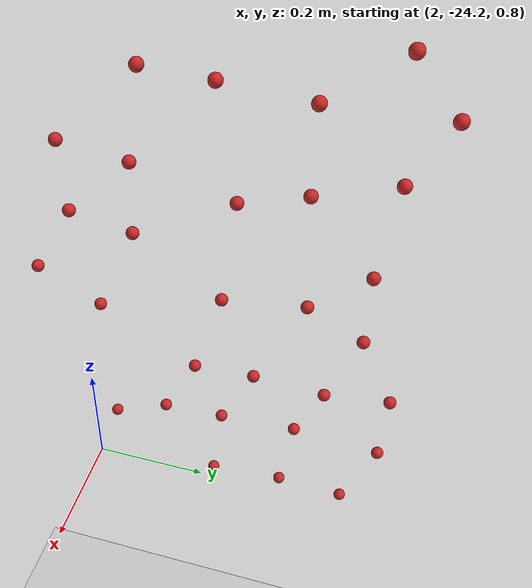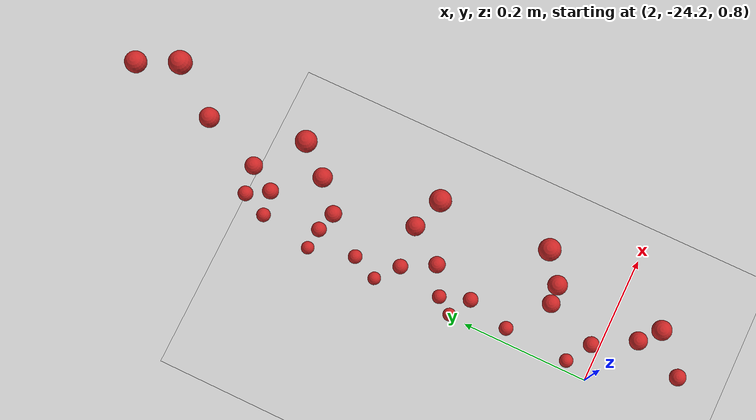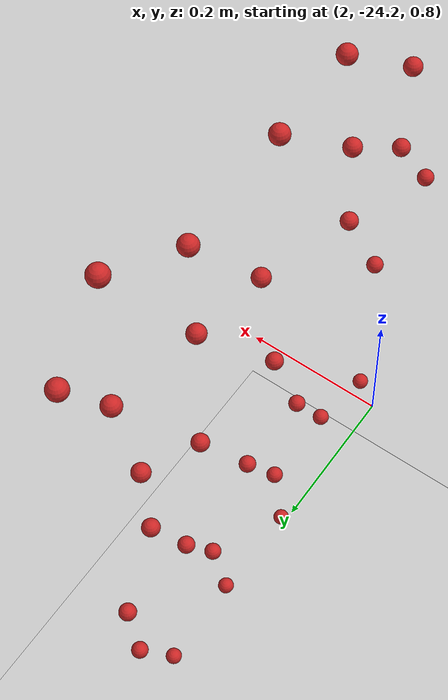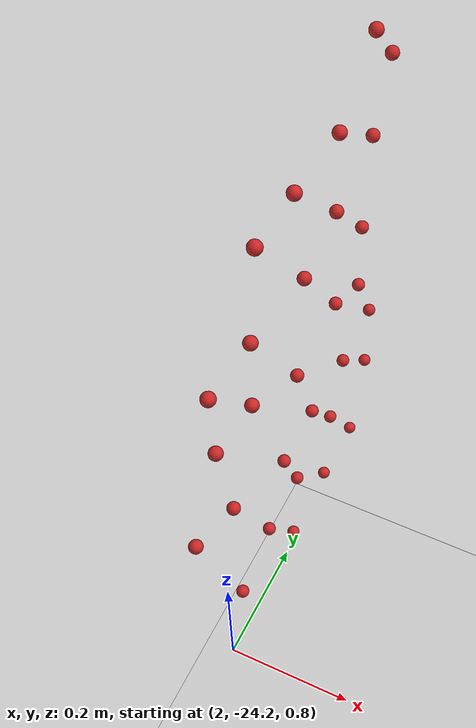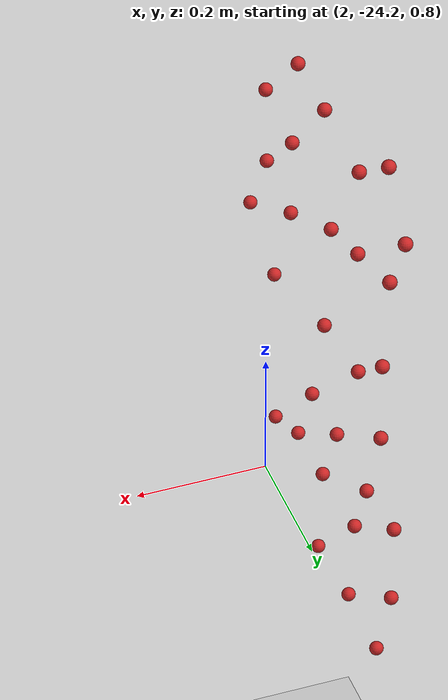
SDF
<sdf version="1.4">
 <world name="default">
  <model name="ground_plane">
   <static>1</static>
   <link name="link">
    <collision name="collision">
     <geometry><plane><normal>0 0 1</normal><size>100 100</size></plane></geometry>
     <surface><friction><ode><mu>100</mu><mu2>50</mu2></ode></friction></surface>
    </collision>
    <visual name="visual">
     <cast_shadows>0</cast_shadows>
     <geometry><plane><normal>0 0 1</normal><size>100 100</size></plane></geometry>
     <material>
      <script><uri>file://media/materials/scripts/gazebo.material</uri><name>Gazebo/Grey</name></script>
     </material>
    </visual>
    <velocity_decay><linear>0</linear><angular>0</angular></velocity_decay>
   </link>
  </model>
  <model name="apple651">
   <link name="my_apple">
    <inertial>
     <pose>2 0 0 0 -0 0</pose>
     <mass>1</mass>
     <inertia><ixx>1</ixx><ixy>0</ixy><ixz>0</ixz><iyy>1</iyy><iyz>0</iyz><izz>1</izz></inertia>
    </inertial>
    <collision name="my_apple_collision">
     <pose>2 0 1 0 -0 0</pose>
     <geometry><sphere><radius>0.01</radius></sphere></geometry>
    </collision>
    <visual name="my_apple_visual">
     <pose>2 0 1 0 -0 0</pose>
     <geometry><sphere><radius>0.01</radius></sphere></geometry>
     <material><script><name>Gazebo/Red</name><uri>__default__</uri></script></material>
    </visual>
    <gravity>0</gravity>
    <velocity_decay><linear>0</linear><angular>0</angular></velocity_decay>
   </link>
   <pose>0 -24.2665 0.242997 0 -0 0</pose>
   <static>0</static>
  </model>
  <model name="apple654">
   <link name="my_apple">
    <inertial>
     <pose>2 0 0 0 -0 0</pose>
     <mass>1</mass>
     <inertia><ixx>1</ixx><ixy>0</ixy><ixz>0</ixz><iyy>1</iyy><iyz>0</iyz><izz>1</izz></inertia>
    </inertial>
    <collision name="my_apple_collision">
     <pose>2 0 1 0 -0 0</pose>
     <geometry><sphere><radius>0.01</radius></sphere></geometry>
    </collision>
    <visual name="my_apple_visual">
     <pose>2 0 1 0 -0 0</pose>
     <geometry><sphere><radius>0.01</radius></sphere></geometry>
     <material><script><name>Gazebo/Red</name><uri>__default__</uri></script></material>
    </visual>
    <gravity>0</gravity>
    <velocity_decay><linear>0</linear><angular>0</angular></velocity_decay>
   </link>
   <pose>0 -24.157 -0.069749 0 -0 0</pose>
   <static>0</static>
  </model>
  <model name="apple656">
   <link name="my_apple">
    <inertial>
     <pose>2 0 0 0 -0 0</pose>
     <mass>1</mass>
     <inertia><ixx>1</ixx><ixy>0</ixy><ixz>0</ixz><iyy>1</iyy><iyz>0</iyz><izz>1</izz></inertia>
    </inertial>
    <collision name="my_apple_collision">
     <pose>2 0 1 0 -0 0</pose>
     <geometry><sphere><radius>0.01</radius></sphere></geometry>
    </collision>
    <visual name="my_apple_visual">
     <pose>2 0 1 0 -0 0</pose>
     <geometry><sphere><radius>0.01</radius></sphere></geometry>
     <material><script><name>Gazebo/Red</name><uri>__default__</uri></script></material>
    </visual>
    <gravity>0</gravity>
    <velocity_decay><linear>0</linear><angular>0</angular></velocity_decay>
   </link>
   <pose>0 -24.0984 0.345343 0 -0 0</pose>
   <static>0</static>
  </model>
  <model name="apple657">
   <link name="my_apple">
    <inertial>
     <pose>2 0 0 0 -0 0</pose>
     <mass>1</mass>
     <inertia><ixx>1</ixx><ixy>0</ixy><ixz>0</ixz><iyy>1</iyy><iyz>0</iyz><izz>1</izz></inertia>
    </inertial>
    <collision name="my_apple_collision">
     <pose>2 0 1 0 -0 0</pose>
     <geometry><sphere><radius>0.01</radius></sphere></geometry>
    </collision>
    <visual name="my_apple_visual">
     <pose>2 0 1 0 -0 0</pose>
     <geometry><sphere><radius>0.01</radius></sphere></geometry>
     <material><script><name>Gazebo/Red</name><uri>__default__</uri></script></material>
    </visual>
    <gravity>0</gravity>
    <velocity_decay><linear>0</linear><angular>0</angular></velocity_decay>
   </link>
   <pose>0 -24.0947 0.468749 0 -0 0</pose>
   <static>0</static>
  </model>
  <model name="apple660">
   <link name="my_apple">
    <inertial>
     <pose>2 0 0 0 -0 0</pose>
     <mass>1</mass>
     <inertia><ixx>1</ixx><ixy>0</ixy><ixz>0</ixz><iyy>1</iyy><iyz>0</iyz><izz>1</izz></inertia>
    </inertial>
    <collision name="my_apple_collision">
     <pose>2 0 1 0 -0 0</pose>
     <geometry><sphere><radius>0.01</radius></sphere></geometry>
    </collision>
    <visual name="my_apple_visual">
     <pose>2 0 1 0 -0 0</pose>
     <geometry><sphere><radius>0.01</radius></sphere></geometry>
     <material><script><name>Gazebo/Red</name><uri>__default__</uri></script></material>
    </visual>
    <gravity>0</gravity>
    <velocity_decay><linear>0</linear><angular>0</angular></velocity_decay>
   </link>
   <pose>0 -24.0619 -0.025178 0 -0 0</pose>
   <static>0</static>
  </model>
  <model name="apple662">
   <link name="my_apple">
    <inertial>
     <pose>2 0 0 0 -0 0</pose>
     <mass>1</mass>
     <inertia><ixx>1</ixx><ixy>0</ixy><ixz>0</ixz><iyy>1</iyy><iyz>0</iyz><izz>1</izz></inertia>
    </inertial>
    <collision name="my_apple_collision">
     <pose>2 0 1 0 -0 0</pose>
     <geometry><sphere><radius>0.01</radius></sphere></geometry>
    </collision>
    <visual name="my_apple_visual">
     <pose>2 0 1 0 -0 0</pose>
     <geometry><sphere><radius>0.01</radius></sphere></geometry>
     <material><script><name>Gazebo/Red</name><uri>__default__</uri></script></material>
    </visual>
    <gravity>0</gravity>
    <velocity_decay><linear>0</linear><angular>0</angular></velocity_decay>
   </link>
   <pose>0 -23.961 0.24875 0 -0 0</pose>
   <static>0</static>
  </model>
  <model name="apple664">
   <link name="my_apple">
    <inertial>
     <pose>2 0 0 0 -0 0</pose>
     <mass>1</mass>
     <inertia><ixx>1</ixx><ixy>0</ixy><ixz>0</ixz><iyy>1</iyy><iyz>0</iyz><izz>1</izz></inertia>
    </inertial>
    <collision name="my_apple_collision">
     <pose>2 0 1 0 -0 0</pose>
     <geometry><sphere><radius>0.01</radius></sphere></geometry>
    </collision>
    <visual name="my_apple_visual">
     <pose>2 0 1 0 -0 0</pose>
     <geometry><sphere><radius>0.01</radius></sphere></geometry>
     <material><script><name>Gazebo/Red</name><uri>__default__</uri></script></material>
    </visual>
    <gravity>0</gravity>
    <velocity_decay><linear>0</linear><angular>0</angular></velocity_decay>
   </link>
   <pose>0 -23.9747 -0.168813 0 -0 0</pose>
   <static>0</static>
  </model>
  <model name="apple665">
   <link name="my_apple">
    <inertial>
     <pose>2 0 0 0 -0 0</pose>
     <mass>1</mass>
     <inertia><ixx>1</ixx><ixy>0</ixy><ixz>0</ixz><iyy>1</iyy><iyz>0</iyz><izz>1</izz></inertia>
    </inertial>
    <collision name="my_apple_collision">
     <pose>2 0 1 0 -0 0</pose>
     <geometry><sphere><radius>0.01</radius></sphere></geometry>
    </collision>
    <visual name="my_apple_visual">
     <pose>2 0 1 0 -0 0</pose>
     <geometry><sphere><radius>0.01</radius></sphere></geometry>
     <material><script><name>Gazebo/Red</name><uri>__default__</uri></script></material>
    </visual>
    <gravity>0</gravity>
    <velocity_decay><linear>0</linear><angular>0</angular></velocity_decay>
   </link>
   <pose>0 -23.9064 0.095346 0 -0 0</pose>
   <static>0</static>
  </model>
  <model name="apple666">
   <link name="my_apple">
    <inertial>
     <pose>2 0 0 0 -0 0</pose>
     <mass>1</mass>
     <inertia><ixx>1</ixx><ixy>0</ixy><ixz>0</ixz><iyy>1</iyy><iyz>0</iyz><izz>1</izz></inertia>
    </inertial>
    <collision name="my_apple_collision">
     <pose>2 0 1 0 -0 0</pose>
     <geometry><sphere><radius>0.01</radius></sphere></geometry>
    </collision>
    <visual name="my_apple_visual">
     <pose>2 0 1 0 -0 0</pose>
     <geometry><sphere><radius>0.01</radius></sphere></geometry>
     <material><script><name>Gazebo/Red</name><uri>__default__</uri></script></material>
    </visual>
    <gravity>0</gravity>
    <velocity_decay><linear>0</linear><angular>0</angular></velocity_decay>
   </link>
   <pose>0 -24.1647 0.187389 0 -0 0</pose>
   <static>0</static>
  </model>
  <model name="apple668">
   <link name="my_apple">
    <inertial>
     <pose>2 0 0 0 -0 0</pose>
     <mass>1</mass>
     <inertia><ixx>1</ixx><ixy>0</ixy><ixz>0</ixz><iyy>1</iyy><iyz>0</iyz><izz>1</izz></inertia>
    </inertial>
    <collision name="my_apple_collision">
     <pose>2 0 1 0 -0 0</pose>
     <geometry><sphere><radius>0.01</radius></sphere></geometry>
    </collision>
    <visual name="my_apple_visual">
     <pose>2 0 1 0 -0 0</pose>
     <geometry><sphere><radius>0.01</radius></sphere></geometry>
     <material><script><name>Gazebo/Red</name><uri>__default__</uri></script></material>
    </visual>
    <gravity>0</gravity>
    <velocity_decay><linear>0</linear><angular>0</angular></velocity_decay>
   </link>
   <pose>0 -23.8386 0.463517 0 -0 0</pose>
   <static>0</static>
  </model>
  <model name="apple669">
   <link name="my_apple">
    <inertial>
     <pose>2 0 0 0 -0 0</pose>
     <mass>1</mass>
     <inertia><ixx>1</ixx><ixy>0</ixy><ixz>0</ixz><iyy>1</iyy><iyz>0</iyz><izz>1</izz></inertia>
    </inertial>
    <collision name="my_apple_collision">
     <pose>2 0 1 0 -0 0</pose>
     <geometry><sphere><radius>0.01</radius></sphere></geometry>
    </collision>
    <visual name="my_apple_visual">
     <pose>2 0 1 0 -0 0</pose>
     <geometry><sphere><radius>0.01</radius></sphere></geometry>
     <material><script><name>Gazebo/Red</name><uri>__default__</uri></script></material>
    </visual>
    <gravity>0</gravity>
    <velocity_decay><linear>0</linear><angular>0</angular></velocity_decay>
   </link>
   <pose>0 -23.9702 0.610209 0 -0 0</pose>
   <static>0</static>
  </model>
  <model name="apple670">
   <link name="my_apple">
    <inertial>
     <pose>2 0 0 0 -0 0</pose>
     <mass>1</mass>
     <inertia><ixx>1</ixx><ixy>0</ixy><ixz>0</ixz><iyy>1</iyy><iyz>0</iyz><izz>1</izz></inertia>
    </inertial>
    <collision name="my_apple_collision">
     <pose>2 0 1 0 -0 0</pose>
     <geometry><sphere><radius>0.01</radius></sphere></geometry>
    </collision>
    <visual name="my_apple_visual">
     <pose>2 0 1 0 -0 0</pose>
     <geometry><sphere><radius>0.01</radius></sphere></geometry>
     <material><script><name>Gazebo/Red</name><uri>__default__</uri></script></material>
    </visual>
    <gravity>0</gravity>
    <velocity_decay><linear>0</linear><angular>0</angular></velocity_decay>
   </link>
   <pose>0 -23.8386 0.599663 0 -0 0</pose>
   <static>0</static>
  </model>
  <model name="apple671">
   <link name="my_apple">
    <inertial>
     <pose>2 0 0 0 -0 0</pose>
     <mass>1</mass>
     <inertia><ixx>1</ixx><ixy>0</ixy><ixz>0</ixz><iyy>1</iyy><iyz>0</iyz><izz>1</izz></inertia>
    </inertial>
    <collision name="my_apple_collision">
     <pose>2 0 1 0 -0 0</pose>
     <geometry><sphere><radius>0.01</radius></sphere></geometry>
    </collision>
    <visual name="my_apple_visual">
     <pose>2 0 1 0 -0 0</pose>
     <geometry><sphere><radius>0.01</radius></sphere></geometry>
     <material><script><name>Gazebo/Red</name><uri>__default__</uri></script></material>
    </visual>
    <gravity>0</gravity>
    <velocity_decay><linear>0</linear><angular>0</angular></velocity_decay>
   </link>
   <pose>0 -23.832 -0.012742 0 -0 0</pose>
   <static>0</static>
  </model>
  <model name="apple672">
   <link name="my_apple">
    <inertial>
     <pose>2 0 0 0 -0 0</pose>
     <mass>1</mass>
     <inertia><ixx>1</ixx><ixy>0</ixy><ixz>0</ixz><iyy>1</iyy><iyz>0</iyz><izz>1</izz></inertia>
    </inertial>
    <collision name="my_apple_collision">
     <pose>2 0 1 0 -0 0</pose>
     <geometry><sphere><radius>0.01</radius></sphere></geometry>
    </collision>
    <visual name="my_apple_visual">
     <pose>2 0 1 0 -0 0</pose>
     <geometry><sphere><radius>0.01</radius></sphere></geometry>
     <material><script><name>Gazebo/Red</name><uri>__default__</uri></script></material>
    </visual>
    <gravity>0</gravity>
    <velocity_decay><linear>0</linear><angular>0</angular></velocity_decay>
   </link>
   <pose>0 -23.8291 0.268037 0 -0 0</pose>
   <static>0</static>
  </model>
  <model name="apple673">
   <link name="my_apple">
    <inertial>
     <pose>2 0 0 0 -0 0</pose>
     <mass>1</mass>
     <inertia><ixx>1</ixx><ixy>0</ixy><ixz>0</ixz><iyy>1</iyy><iyz>0</iyz><izz>1</izz></inertia>
    </inertial>
    <collision name="my_apple_collision">
     <pose>2 0 1 0 -0 0</pose>
     <geometry><sphere><radius>0.01</radius></sphere></geometry>
    </collision>
    <visual name="my_apple_visual">
     <pose>2 0 1 0 -0 0</pose>
     <geometry><sphere><radius>0.01</radius></sphere></geometry>
     <material><script><name>Gazebo/Red</name><uri>__default__</uri></script></material>
    </visual>
    <gravity>0</gravity>
    <velocity_decay><linear>0</linear><angular>0</angular></velocity_decay>
   </link>
   <pose>0 -23.8508 -0.156813 0 -0 0</pose>
   <static>0</static>
  </model>
  <model name="apple674">
   <link name="my_apple">
    <inertial>
     <pose>2 0 0 0 -0 0</pose>
     <mass>1</mass>
     <inertia><ixx>1</ixx><ixy>0</ixy><ixz>0</ixz><iyy>1</iyy><iyz>0</iyz><izz>1</izz></inertia>
    </inertial>
    <collision name="my_apple_collision">
     <pose>2 0 1 0 -0 0</pose>
     <geometry><sphere><radius>0.01</radius></sphere></geometry>
    </collision>
    <visual name="my_apple_visual">
     <pose>2 0 1 0 -0 0</pose>
     <geometry><sphere><radius>0.01</radius></sphere></geometry>
     <material><script><name>Gazebo/Red</name><uri>__default__</uri></script></material>
    </visual>
    <gravity>0</gravity>
    <velocity_decay><linear>0</linear><angular>0</angular></velocity_decay>
   </link>
   <pose>0 -23.7404 0.345235 0 -0 0</pose>
   <static>0</static>
  </model>
  <model name="apple675">
   <link name="my_apple">
    <inertial>
     <pose>2 0 0 0 -0 0</pose>
     <mass>1</mass>
     <inertia><ixx>1</ixx><ixy>0</ixy><ixz>0</ixz><iyy>1</iyy><iyz>0</iyz><izz>1</izz></inertia>
    </inertial>
    <collision name="my_apple_collision">
     <pose>2 0 1 0 -0 0</pose>
     <geometry><sphere><radius>0.01</radius></sphere></geometry>
    </collision>
    <visual name="my_apple_visual">
     <pose>2 0 1 0 -0 0</pose>
     <geometry><sphere><radius>0.01</radius></sphere></geometry>
     <material><script><name>Gazebo/Red</name><uri>__default__</uri></script></material>
    </visual>
    <gravity>0</gravity>
    <velocity_decay><linear>0</linear><angular>0</angular></velocity_decay>
   </link>
   <pose>0 -23.7207 0.502827 0 -0 0</pose>
   <static>0</static>
  </model>
  <model name="apple676">
   <link name="my_apple">
    <inertial>
     <pose>2 0 0 0 -0 0</pose>
     <mass>1</mass>
     <inertia><ixx>1</ixx><ixy>0</ixy><ixz>0</ixz><iyy>1</iyy><iyz>0</iyz><izz>1</izz></inertia>
    </inertial>
    <collision name="my_apple_collision">
     <pose>2 0 1 0 -0 0</pose>
     <geometry><sphere><radius>0.01</radius></sphere></geometry>
    </collision>
    <visual name="my_apple_visual">
     <pose>2 0 1 0 -0 0</pose>
     <geometry><sphere><radius>0.01</radius></sphere></geometry>
     <material><script><name>Gazebo/Red</name><uri>__default__</uri></script></material>
    </visual>
    <gravity>0</gravity>
    <velocity_decay><linear>0</linear><angular>0</angular></velocity_decay>
   </link>
   <pose>0 -23.6694 0.603498 0 -0 0</pose>
   <static>0</static>
  </model>
  <model name="apple678">
   <link name="my_apple">
    <inertial>
     <pose>2 0 0 0 -0 0</pose>
     <mass>1</mass>
     <inertia><ixx>1</ixx><ixy>0</ixy><ixz>0</ixz><iyy>1</iyy><iyz>0</iyz><izz>1</izz></inertia>
    </inertial>
    <collision name="my_apple_collision">
     <pose>2 0 1 0 -0 0</pose>
     <geometry><sphere><radius>0.01</radius></sphere></geometry>
    </collision>
    <visual name="my_apple_visual">
     <pose>2 0 1 0 -0 0</pose>
     <geometry><sphere><radius>0.01</radius></sphere></geometry>
     <material><script><name>Gazebo/Red</name><uri>__default__</uri></script></material>
    </visual>
    <gravity>0</gravity>
    <velocity_decay><linear>0</linear><angular>0</angular></velocity_decay>
   </link>
   <pose>0 -23.7402 0.220664 0 -0 0</pose>
   <static>0</static>
  </model>
  <model name="apple679">
   <link name="my_apple">
    <inertial>
     <pose>2 0 0 0 -0 0</pose>
     <mass>1</mass>
     <inertia><ixx>1</ixx><ixy>0</ixy><ixz>0</ixz><iyy>1</iyy><iyz>0</iyz><izz>1</izz></inertia>
    </inertial>
    <collision name="my_apple_collision">
     <pose>2 0 1 0 -0 0</pose>
     <geometry><sphere><radius>0.01</radius></sphere></geometry>
    </collision>
    <visual name="my_apple_visual">
     <pose>2 0 1 0 -0 0</pose>
     <geometry><sphere><radius>0.01</radius></sphere></geometry>
     <material><script><name>Gazebo/Red</name><uri>__default__</uri></script></material>
    </visual>
    <gravity>0</gravity>
    <velocity_decay><linear>0</linear><angular>0</angular></velocity_decay>
   </link>
   <pose>0 -24.2027 0.484914 0 -0 0</pose>
   <static>0</static>
  </model>
  <model name="apple681">
   <link name="my_apple">
    <inertial>
     <pose>2 0 0 0 -0 0</pose>
     <mass>1</mass>
     <inertia><ixx>1</ixx><ixy>0</ixy><ixz>0</ixz><iyy>1</iyy><iyz>0</iyz><izz>1</izz></inertia>
    </inertial>
    <collision name="my_apple_collision">
     <pose>2 0 1 0 -0 0</pose>
     <geometry><sphere><radius>0.01</radius></sphere></geometry>
    </collision>
    <visual name="my_apple_visual">
     <pose>2 0 1 0 -0 0</pose>
     <geometry><sphere><radius>0.01</radius></sphere></geometry>
     <material><script><name>Gazebo/Red</name><uri>__default__</uri></script></material>
    </visual>
    <gravity>0</gravity>
    <velocity_decay><linear>0</linear><angular>0</angular></velocity_decay>
   </link>
   <pose>0 -23.9397 0.431607 0 -0 0</pose>
   <static>0</static>
  </model>
  <model name="apple682">
   <link name="my_apple">
    <inertial>
     <pose>2 0 0 0 -0 0</pose>
     <mass>1</mass>
     <inertia><ixx>1</ixx><ixy>0</ixy><ixz>0</ixz><iyy>1</iyy><iyz>0</iyz><izz>1</izz></inertia>
    </inertial>
    <collision name="my_apple_collision">
     <pose>2 0 1 0 -0 0</pose>
     <geometry><sphere><radius>0.01</radius></sphere></geometry>
    </collision>
    <visual name="my_apple_visual">
     <pose>2 0 1 0 -0 0</pose>
     <geometry><sphere><radius>0.01</radius></sphere></geometry>
     <material><script><name>Gazebo/Red</name><uri>__default__</uri></script></material>
    </visual>
    <gravity>0</gravity>
    <velocity_decay><linear>0</linear><angular>0</angular></velocity_decay>
   </link>
   <pose>0 -23.6843 0.103049 0 -0 0</pose>
   <static>0</static>
  </model>
  <model name="apple683">
   <link name="my_apple">
    <inertial>
     <pose>2 0 0 0 -0 0</pose>
     <mass>1</mass>
     <inertia><ixx>1</ixx><ixy>0</ixy><ixz>0</ixz><iyy>1</iyy><iyz>0</iyz><izz>1</izz></inertia>
    </inertial>
    <collision name="my_apple_collision">
     <pose>2 0 1 0 -0 0</pose>
     <geometry><sphere><radius>0.01</radius></sphere></geometry>
    </collision>
    <visual name="my_apple_visual">
     <pose>2 0 1 0 -0 0</pose>
     <geometry><sphere><radius>0.01</radius></sphere></geometry>
     <material><script><name>Gazebo/Red</name><uri>__default__</uri></script></material>
    </visual>
    <gravity>0</gravity>
    <velocity_decay><linear>0</linear><angular>0</angular></velocity_decay>
   </link>
   <pose>0 -23.6882 -0.024886 0 -0 0</pose>
   <static>0</static>
  </model>
  <model name="apple687">
   <link name="my_apple">
    <inertial>
     <pose>2 0 0 0 -0 0</pose>
     <mass>1</mass>
     <inertia><ixx>1</ixx><ixy>0</ixy><ixz>0</ixz><iyy>1</iyy><iyz>0</iyz><izz>1</izz></inertia>
    </inertial>
    <collision name="my_apple_collision">
     <pose>2 0 1 0 -0 0</pose>
     <geometry><sphere><radius>0.01</radius></sphere></geometry>
    </collision>
    <visual name="my_apple_visual">
     <pose>2 0 1 0 -0 0</pose>
     <geometry><sphere><radius>0.01</radius></sphere></geometry>
     <material><script><name>Gazebo/Red</name><uri>__default__</uri></script></material>
    </visual>
    <gravity>0</gravity>
    <velocity_decay><linear>0</linear><angular>0</angular></velocity_decay>
   </link>
   <pose>0 -24.0064 0.090652 0 -0 0</pose>
   <static>0</static>
  </model>
  <model name="apple688">
   <link name="my_apple">
    <inertial>
     <pose>2 0 0 0 -0 0</pose>
     <mass>1</mass>
     <inertia><ixx>1</ixx><ixy>0</ixy><ixz>0</ixz><iyy>1</iyy><iyz>0</iyz><izz>1</izz></inertia>
    </inertial>
    <collision name="my_apple_collision">
     <pose>2 0 1 0 -0 0</pose>
     <geometry><sphere><radius>0.01</radius></sphere></geometry>
    </collision>
    <visual name="my_apple_visual">
     <pose>2 0 1 0 -0 0</pose>
     <geometry><sphere><radius>0.01</radius></sphere></geometry>
     <material><script><name>Gazebo/Red</name><uri>__default__</uri></script></material>
    </visual>
    <gravity>0</gravity>
    <velocity_decay><linear>0</linear><angular>0</angular></velocity_decay>
   </link>
   <pose>0 -23.9602 -0.020642 0 -0 0</pose>
   <static>0</static>
  </model>
  <model name="apple691">
   <link name="my_apple">
    <inertial>
     <pose>2 0 0 0 -0 0</pose>
     <mass>1</mass>
     <inertia><ixx>1</ixx><ixy>0</ixy><ixz>0</ixz><iyy>1</iyy><iyz>0</iyz><izz>1</izz></inertia>
    </inertial>
    <collision name="my_apple_collision">
     <pose>2 0 1 0 -0 0</pose>
     <geometry><sphere><radius>0.01</radius></sphere></geometry>
    </collision>
    <visual name="my_apple_visual">
     <pose>2 0 1 0 -0 0</pose>
     <geometry><sphere><radius>0.01</radius></sphere></geometry>
     <material><script><name>Gazebo/Red</name><uri>__default__</uri></script></material>
    </visual>
    <gravity>0</gravity>
    <velocity_decay><linear>0</linear><angular>0</angular></velocity_decay>
   </link>
   <pose>0 -24.074 0.615874 0 -0 0</pose>
   <static>0</static>
  </model>
  <model name="apple693">
   <link name="my_apple">
    <inertial>
     <pose>2 0 0 0 -0 0</pose>
     <mass>1</mass>
     <inertia><ixx>1</ixx><ixy>0</ixy><ixz>0</ixz><iyy>1</iyy><iyz>0</iyz><izz>1</izz></inertia>
    </inertial>
    <collision name="my_apple_collision">
     <pose>2 0 1 0 -0 0</pose>
     <geometry><sphere><radius>0.01</radius></sphere></geometry>
    </collision>
    <visual name="my_apple_visual">
     <pose>2 0 1 0 -0 0</pose>
     <geometry><sphere><radius>0.01</radius></sphere></geometry>
     <material><script><name>Gazebo/Red</name><uri>__default__</uri></script></material>
    </visual>
    <gravity>0</gravity>
    <velocity_decay><linear>0</linear><angular>0</angular></velocity_decay>
   </link>
   <pose>0 -23.7389 -0.163214 0 -0 0</pose>
   <static>0</static>
  </model>
  <model name="apple700">
   <link name="my_apple">
    <inertial>
     <pose>2 0 0 0 -0 0</pose>
     <mass>1</mass>
     <inertia><ixx>1</ixx><ixy>0</ixy><ixz>0</ixz><iyy>1</iyy><iyz>0</iyz><izz>1</izz></inertia>
    </inertial>
    <collision name="my_apple_collision">
     <pose>2 0 1 0 -0 0</pose>
     <geometry><sphere><radius>0.01</radius></sphere></geometry>
    </collision>
    <visual name="my_apple_visual">
     <pose>2 0 1 0 -0 0</pose>
     <geometry><sphere><radius>0.01</radius></sphere></geometry>
     <material><script><name>Gazebo/Red</name><uri>__default__</uri></script></material>
    </visual>
    <gravity>0</gravity>
    <velocity_decay><linear>0</linear><angular>0</angular></velocity_decay>
   </link>
   <pose>0 -24.1974 0.365794 0 -0 0</pose>
   <static>0</static>
  </model>
  <model name="apple704">
   <link name="my_apple">
    <inertial>
     <pose>2 0 0 0 -0 0</pose>
     <mass>1</mass>
     <inertia><ixx>1</ixx><ixy>0</ixy><ixz>0</ixz><iyy>1</iyy><iyz>0</iyz><izz>1</izz></inertia>
    </inertial>
    <collision name="my_apple_collision">
     <pose>2 0 1 0 -0 0</pose>
     <geometry><sphere><radius>0.01</radius></sphere></geometry>
    </collision>
    <visual name="my_apple_visual">
     <pose>2 0 1 0 -0 0</pose>
     <geometry><sphere><radius>0.01</radius></sphere></geometry>
     <material><script><name>Gazebo/Red</name><uri>__default__</uri></script></material>
    </visual>
    <gravity>0</gravity>
    <velocity_decay><linear>0</linear><angular>0</angular></velocity_decay>
   </link>
   <pose>0 -23.7885 0.087394 0 -0 0</pose>
   <static>0</static>
  </model>
  <model name="apple705">
   <link name="my_apple">
    <inertial>
     <pose>2 0 0 0 -0 0</pose>
     <mass>1</mass>
     <inertia><ixx>1</ixx><ixy>0</ixy><ixz>0</ixz><iyy>1</iyy><iyz>0</iyz><izz>1</izz></inertia>
    </inertial>
    <collision name="my_apple_collision">
     <pose>2 0 1 0 -0 0</pose>
     <geometry><sphere><radius>0.01</radius></sphere></geometry>
    </collision>
    <visual name="my_apple_visual">
     <pose>2 0 1 0 -0 0</pose>
     <geometry><sphere><radius>0.01</radius></sphere></geometry>
     <material><script><name>Gazebo/Red</name><uri>__default__</uri></script></material>
    </visual>
    <gravity>0</gravity>
    <velocity_decay><linear>0</linear><angular>0</angular></velocity_decay>
   </link>
   <pose>0 -23.7337 0.682013 0 -0 0</pose>
   <static>0</static>
  </model>
 </world>
</sdf>
